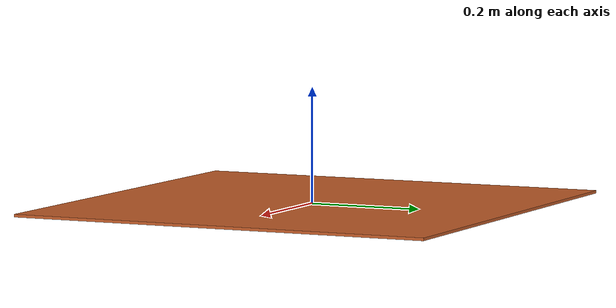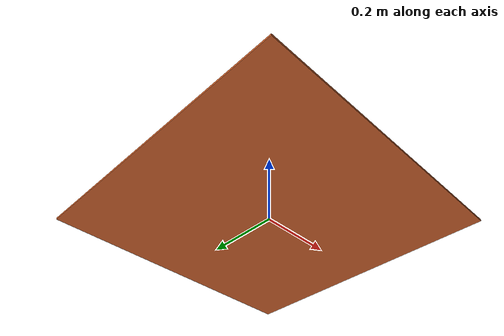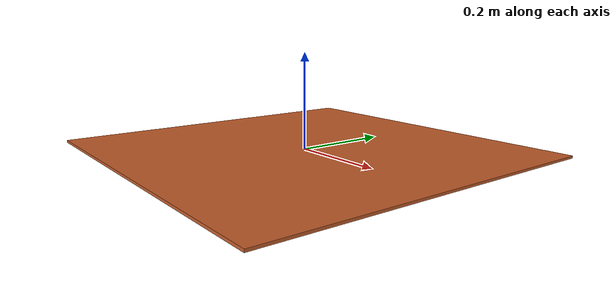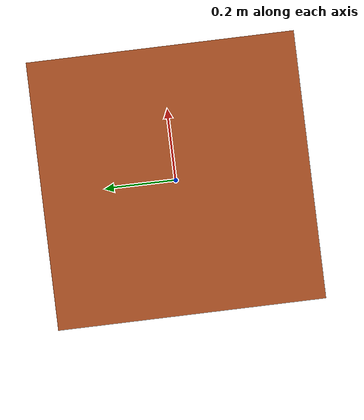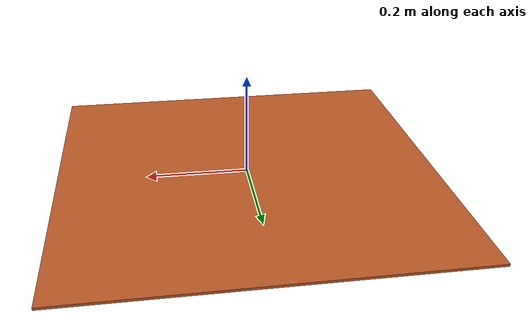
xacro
<?xml version="1.0" encoding="utf-8"?>
<robot name="jump_platform" xmlns:xacro="http://ros.org/wiki/xacro">

 <material name="Black">
    <color rgba="${0/255} ${0/255} ${0/255} 1.0"/>
  </material>

 <material name="Red">
    <color rgba="${255/255} ${100/255} ${0/255} 1.0"/>
  </material>

 <material name="Brown">
    <color rgba="${198/255} ${94/255} ${42/255} 1.0"/>
  </material>

 <material name="DarkBrown">
    <color rgba="${144/255} ${68/255} ${30/255} 1.0"/>
  </material>

 <!--https://www.textures.com/browse/cliffs/2060 -->

<link name="jump_platform">
	<inertial>
		<mass value="10"/>
		<inertia ixx="0.4" ixy="0.0" ixz="0.0" iyy="0.4" iyz="0.0" izz="0.2"/>
	</inertial>

	<visual > <!-- dont put name otherwise gazebo discards color-->
		<origin xyz="0 0 0" rpy="0 0 0"/>
		<geometry>
			<box size="0.75 0.75 0.005"/>
		</geometry>
		<material name="Brown"/><!--rviz"/-->

	</visual>
	<collision name="box">
		<origin xyz="0 0 0" rpy="0 0 0"/>
		<geometry>
			<box size="0.75 0.75 0.005"/>
		</geometry>

		<surface>
		<bounce>
		<restitution_coefficient>0.01</restitution_coefficient>
		<threshold>5.0</threshold>
		</bounce>
		<friction>
		<ode>
		<mu>1</mu>
		<mu2>1</mu2>
		</ode>
		</friction>
		<contact>
		<ode>
		<max_vel>0.1</max_vel>
		<min_depth>0.001</min_depth>
		<kp>1000000.0</kp>
		<kd>1000.0</kd>
		</ode>
		</contact>
		</surface>
	</collision>

	</link>

	<gazebo>
	    <static>true</static>
	</gazebo>

	 <!--one of this /usr/share/gazebo-11/media/materials/scripts/gazebo.material   is for gazebo -->

	<gazebo reference="wall">
   	 <material>Gazebo/RockWall</material>
  	</gazebo>

</robot>
